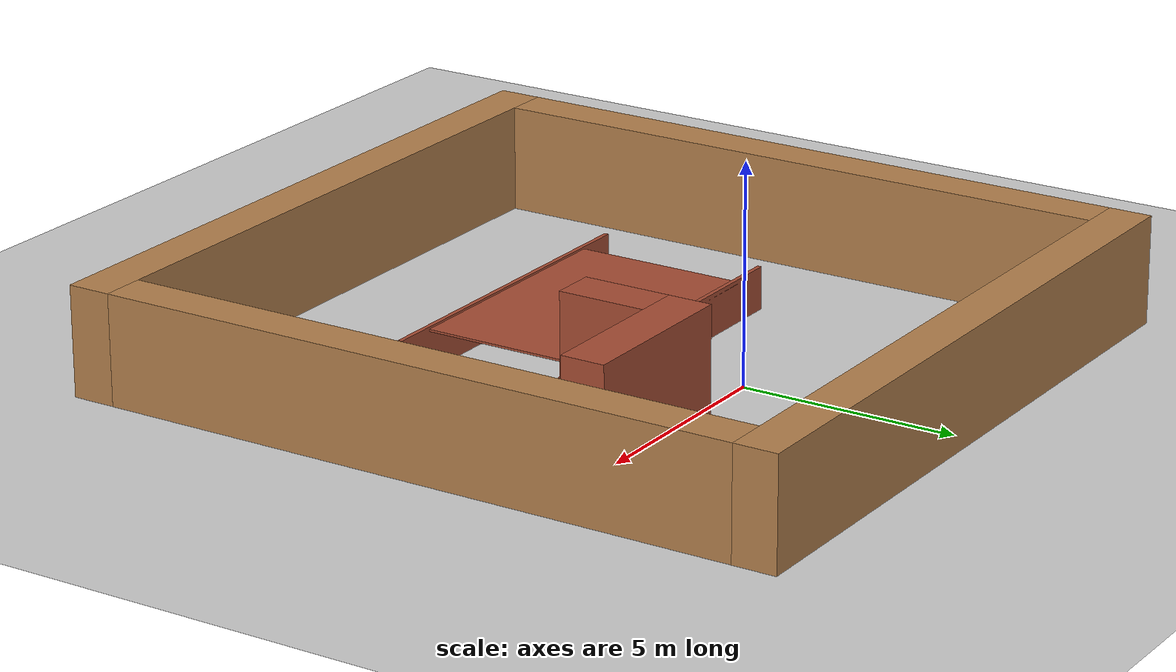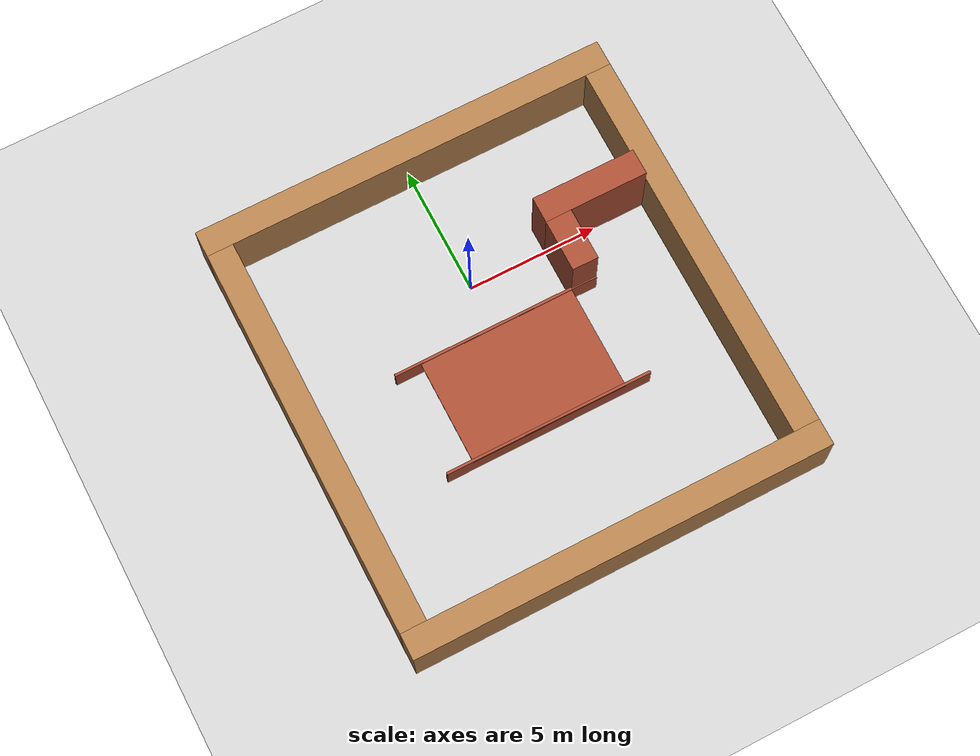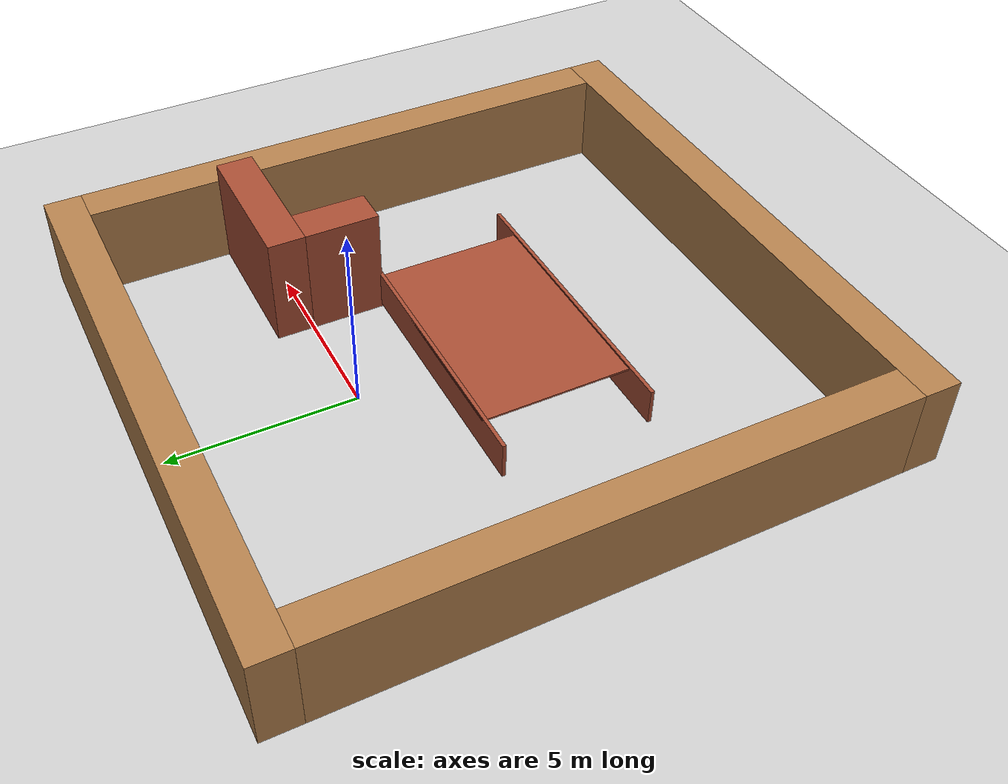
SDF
<sdf version='1.7'>
  <world name='heterogenous_arena'>
    <light name='sun' type='directional'>
      <cast_shadows>1</cast_shadows>
      <pose>0 0 10 0 -0 0</pose>
      <diffuse>0.8 0.8 0.8 1</diffuse>
      <specular>0.2 0.2 0.2 1</specular>
      <attenuation>
        <range>1000</range>
        <constant>0.9</constant>
        <linear>0.01</linear>
        <quadratic>0.001</quadratic>
      </attenuation>
      <direction>-0.5 0.1 -0.9</direction>
    </light>

    <model name='ground_plane'>
      <static>1</static>
      <link name='link'>
        <collision name='collision'>
          <geometry>
            <plane>
              <normal>0 0 1</normal>
              <size>35 35</size>
            </plane>
          </geometry>
          <surface>
            <friction>
              <ode>
                <mu>100</mu>
                <mu2>50</mu2>
              </ode>
            </friction>
          </surface>
        </collision>
        <visual name='visual'>
          <cast_shadows>0</cast_shadows>
          <geometry>
            <plane>
              <normal>0 0 1</normal>
              <size>35 35</size>
            </plane>
          </geometry>
          <material>
            <script>
              <uri>file://media/materials/scripts/gazebo.material</uri>
              <name>Gazebo/Grey</name>
            </script>
          </material>
        </visual>
      </link>
    </model>

    <physics type='ode'>
      <max_step_size>0.001</max_step_size>
      <real_time_factor>1</real_time_factor>
      <real_time_update_rate>1000</real_time_update_rate>
    </physics>

    <model name='heterogenous_arena_features'>
      <pose>0 0 0 0 0 0</pose>
      <static>1</static>

      <link name='North_Wall'>
        <pose>0 5.0 1.25 0 0 0</pose>
        <collision name='col'><geometry><box><size>16 1 2.5</size></box></geometry></collision>
        <visual name='vis'><geometry><box><size>16 1 2.5</size></box></geometry>
        <material><script><name>Gazebo/Wood</name></script></material></visual>
      </link>
      <link name='South_Wall'>
        <pose>0 -11.0 1.25 0 0 0</pose>
        <collision name='col'><geometry><box><size>16 1 2.5</size></box></geometry></collision>
        <visual name='vis'><geometry><box><size>16 1 2.5</size></box></geometry>
        <material><script><name>Gazebo/Wood</name></script></material></visual>
      </link>
      <link name='East_Wall'>
        <pose>7.5 -3 1.25 0 0 0</pose>
        <collision name='col'><geometry><box><size>1 15 2.5</size></box></geometry></collision>
        <visual name='vis'><geometry><box><size>1 15 2.5</size></box></geometry>
        <material><script><name>Gazebo/Wood</name></script></material></visual>
      </link>
      <link name='West_Wall'>
        <pose>-7.5 -3 1.25 0 0 0</pose>
        <collision name='col'><geometry><box><size>1 15 2.5</size></box></geometry></collision>
        <visual name='vis'><geometry><box><size>1 15 2.5</size></box></geometry>
        <material><script><name>Gazebo/Wood</name></script></material></visual>
      </link>

      <link name='Corner_2_V'>
        <pose>3.5 -1.0 1.5 0 0 0</pose>
        <collision name='col'><geometry><box><size>1 2.0 3</size></box></geometry></collision>
        <visual name='vis'><geometry><box><size>1 2.0 3</size></box></geometry>
        <material><script><name>Gazebo/Bricks</name></script></material></visual>
      </link>

      <link name='Corner_2_H'>
        <pose>5 0.5 1.5 0 0 0</pose>
        <collision name='col'><geometry><box><size>4 1 3</size></box></geometry></collision>
        <visual name='vis'><geometry><box><size>4 1 3</size></box></geometry>
        <material><script><name>Gazebo/Bricks</name></script></material></visual>
      </link>

    </model>

    <model name='simple_box_tunnel'>
      <pose>0 -4 0 0 0 0</pose>
      <static>1</static>

      <link name='wall_left'>
        <pose>0 2.0 0.6 0 0 0</pose>
        <collision name='c'><geometry><box><size>8 0.1 1.0</size></box></geometry></collision>
        <visual name='v'><geometry><box><size>8 0.1 1.0</size></box></geometry>
        <material><script><name>Gazebo/Bricks</name></script></material></visual>
      </link>

      <link name='wall_right'>
        <pose>0 -2.0 0.6 0 0 0</pose>
        <collision name='c'><geometry><box><size>8 0.1 1.0</size></box></geometry></collision>
        <visual name='v'><geometry><box><size>8 0.1 1.0</size></box></geometry>
        <material><script><name>Gazebo/Bricks</name></script></material></visual>
      </link>

      <link name='roof'>
        <pose>0 0 1.025 0 0 0</pose>
        <collision name='c'><geometry><box><size>6 4.1 0.05</size></box></geometry></collision>
        <visual name='v'><geometry><box><size>6 4.1 0.05</size></box></geometry>
        <material><script><name>Gazebo/Bricks</name></script></material></visual>
      </link>
    </model>
  </world>
</sdf>
